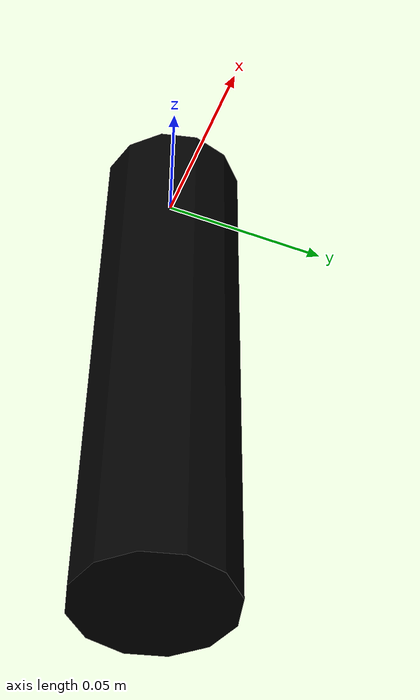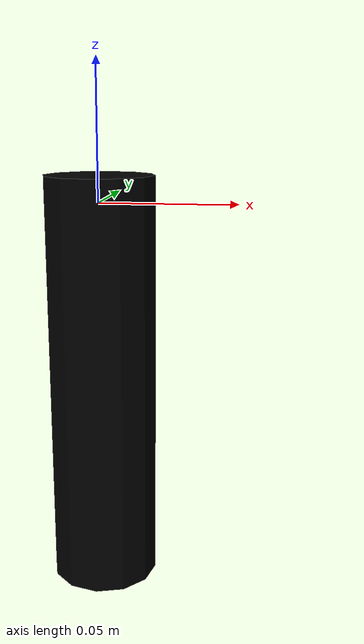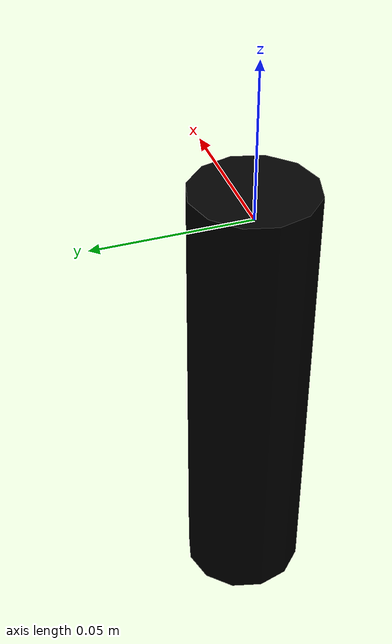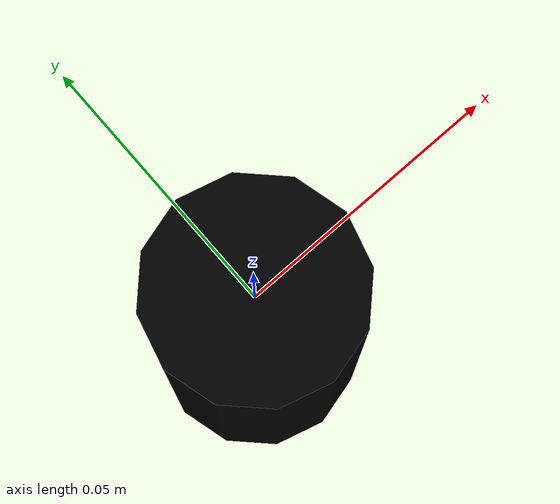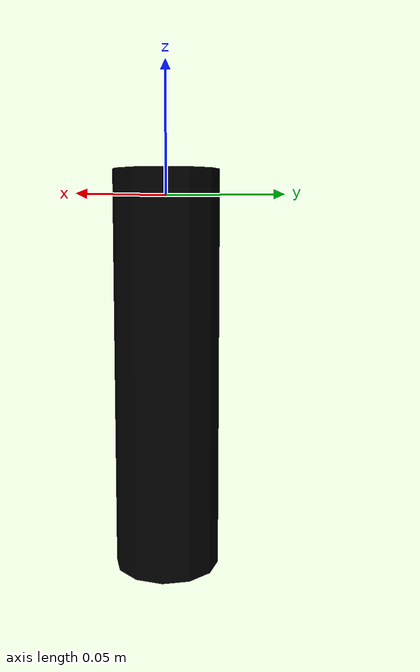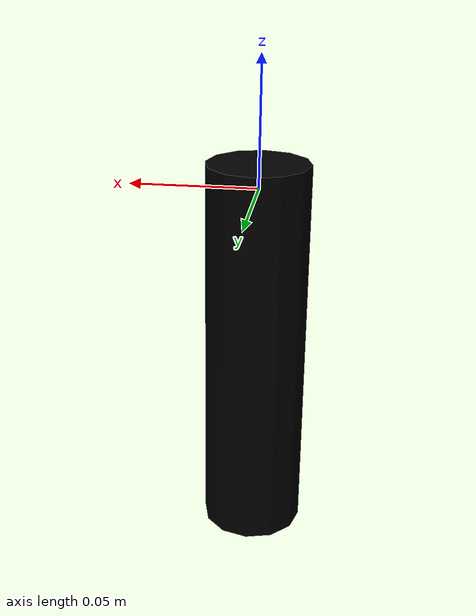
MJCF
<mujoco model="head_link1">
  <default>
    <default class="visual">
      <geom group="2" type="mesh" contype="0" conaffinity="0"/>
    </default>
    <default class="collision">
      <geom group="3" type="mesh"/>
    </default>
  </default>
  <asset>
    <material name="material_head_link1_0" specular="0.20000000000000004" shininess="1.0" rgba="0.00000000 0.00000000 0.00000000 1.0"/>
    <mesh file="head_link1.obj"/>
  </asset>
  <worldbody>
    <body name="head_link1">
      <geom material="material_head_link1_0" mesh="head_link1" class="visual"/>
      <geom mesh="head_link1" class="collision"/>
    </body>
  </worldbody>
</mujoco>
